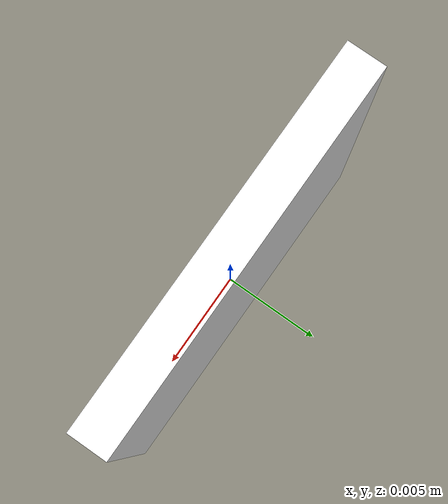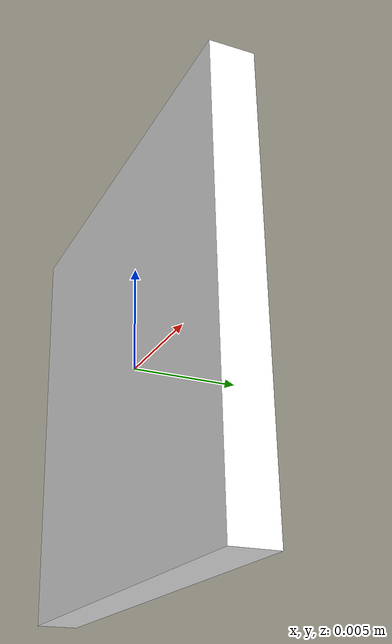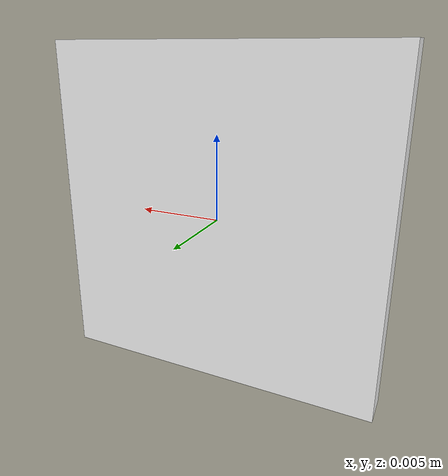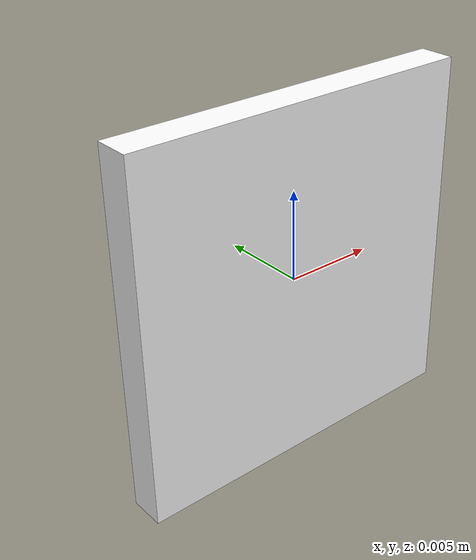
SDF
<?xml version="1.0"?>
<sdf version="1.8">
  <model name="aruco_marker_0">
    <static>true</static>
    <link name="marker_link">
      <visual name="marker_visual">
        <geometry>
          <box>
            <size>0.020 0.002 0.020</size>
          </box>
        </geometry>
        <material>
          <diffuse>1 1 1 1</diffuse>
          <specular>0.1 0.1 0.1 1</specular>
          <pbr>
            <metal>
              <albedo_map>model://aruco_marker_0/materials/textures/marker_0.png</albedo_map>
            </metal>
          </pbr>
        </material>
      </visual>
      <collision name="marker_collision">
        <geometry>
          <box>
            <size>0.020 0.002 0.020</size>
          </box>
        </geometry>
      </collision>
    </link>
  </model>
</sdf>
